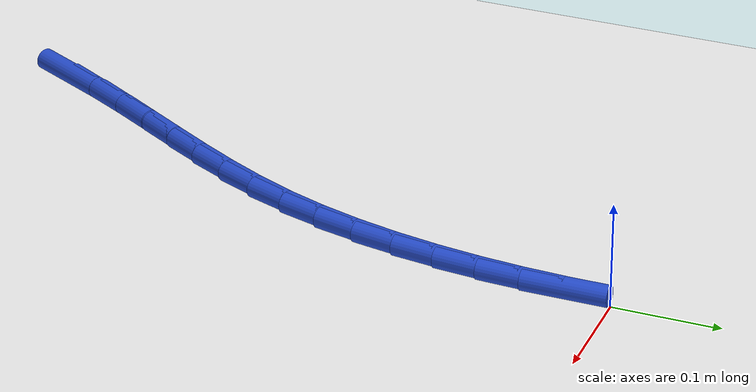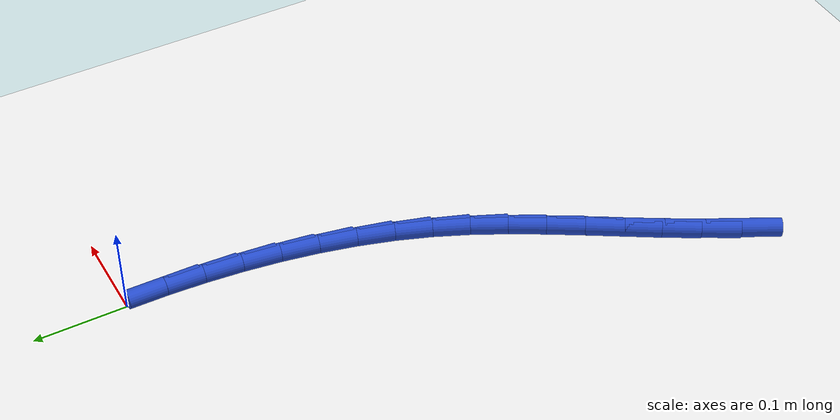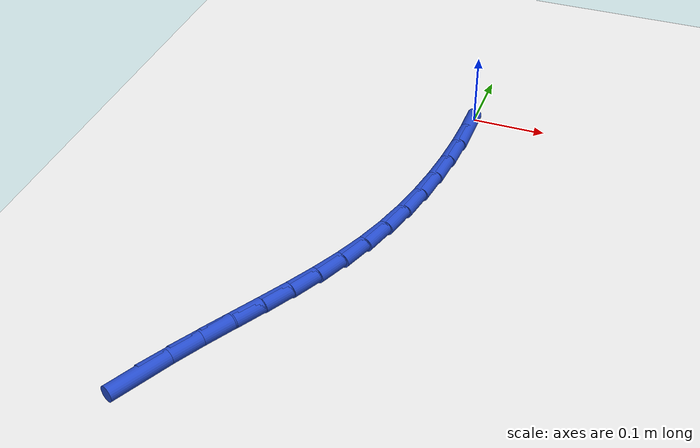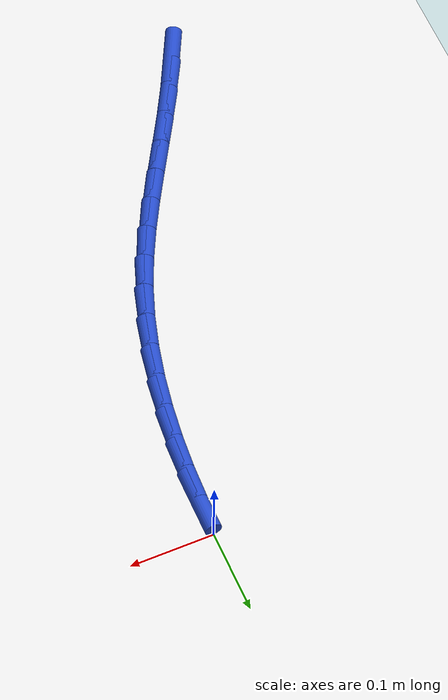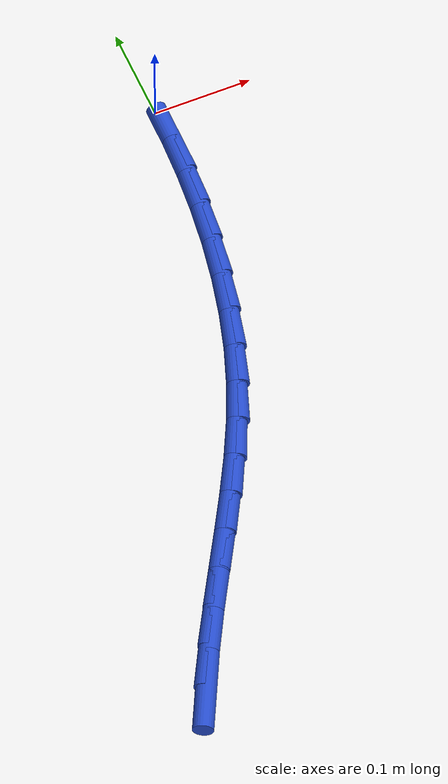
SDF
<sdf version="1.6">
 <world name="default">
  <model name="ground_plane">
   <static>1</static>
   <link name="link">
    <collision name="collision">
     <geometry><plane><normal>0 0 1</normal><size>100 100</size></plane></geometry>
     <surface><friction><ode><mu>100</mu><mu2>50</mu2></ode></friction></surface>
    </collision>
    <visual name="visual">
     <cast_shadows>0</cast_shadows>
     <geometry><plane><normal>0 0 1</normal><size>100 100</size></plane></geometry>
     <material>
      <script><uri>file://media/materials/scripts/gazebo.material</uri><name>Gazebo/WhiteGlow</name></script>
     </material>
    </visual>
   </link>
  </model>
  <model name="line">
   <link name="link_174">
    <pose>-0.2082560343043629 -0.6087645690070046 0.01 0 1.57 1.0992928069549874</pose>
    <collision name="collision">
     <geometry><cylinder><radius>0.01</radius><length>0.08</length></cylinder></geometry>
    </collision>
    <visual name="visual">
     <material>
      <script><name>Gazebo/Blue</name><uri>file://media/materials/scripts/gazebo.material</uri></script>
     </material>
     <geometry><cylinder><radius>0.01</radius><length>0.08</length></cylinder></geometry>
    </visual>
   </link>
   <link name="link_175">
    <pose>-0.18886468387337793 -0.5707317846184873 0.01 0 1.57 1.0630864698914708</pose>
    <collision name="collision">
     <geometry><cylinder><radius>0.01</radius><length>0.08</length></cylinder></geometry>
    </collision>
    <visual name="visual">
     <material>
      <script><name>Gazebo/Blue</name><uri>file://media/materials/scripts/gazebo.material</uri></script>
     </material>
     <geometry><cylinder><radius>0.01</radius><length>0.08</length></cylinder></geometry>
    </visual>
   </link>
   <link name="link_176">
    <pose>-0.1685208039159124 -0.534165476811088 0.01 0 1.57 1.0406086755819266</pose>
    <collision name="collision">
     <geometry><cylinder><radius>0.01</radius><length>0.08</length></cylinder></geometry>
    </collision>
    <visual name="visual">
     <material>
      <script><name>Gazebo/Blue</name><uri>file://media/materials/scripts/gazebo.material</uri></script>
     </material>
     <geometry><cylinder><radius>0.01</radius><length>0.08</length></cylinder></geometry>
    </visual>
   </link>
   <link name="link_177">
    <pose>-0.1477008216707731 -0.4986467471127859 0.01 0 1.57 1.0327906734724444</pose>
    <collision name="collision">
     <geometry><cylinder><radius>0.01</radius><length>0.08</length></cylinder></geometry>
    </collision>
    <visual name="visual">
     <material>
      <script><name>Gazebo/Blue</name><uri>file://media/materials/scripts/gazebo.material</uri></script>
     </material>
     <geometry><cylinder><radius>0.01</radius><length>0.08</length></cylinder></geometry>
    </visual>
   </link>
   <link name="link_178">
    <pose>-0.12688116437676697 -0.4637566970515596 0.01 0 1.57 1.0402996359947443</pose>
    <collision name="collision">
     <geometry><cylinder><radius>0.01</radius><length>0.08</length></cylinder></geometry>
    </collision>
    <visual name="visual">
     <material>
      <script><name>Gazebo/Blue</name><uri>file://media/materials/scripts/gazebo.material</uri></script>
     </material>
     <geometry><cylinder><radius>0.01</radius><length>0.08</length></cylinder></geometry>
    </visual>
   </link>
   <link name="link_179">
    <pose>-0.10653825927270123 -0.42907642815538904 0.01 0 1.57 1.063550360171159</pose>
    <collision name="collision">
     <geometry><cylinder><radius>0.01</radius><length>0.08</length></cylinder></geometry>
    </collision>
    <visual name="visual">
     <material>
      <script><name>Gazebo/Blue</name><uri>file://media/materials/scripts/gazebo.material</uri></script>
     </material>
     <geometry><cylinder><radius>0.01</radius><length>0.08</length></cylinder></geometry>
    </visual>
   </link>
   <link name="link_180">
    <pose>-0.08714853359738187 -0.39418704195225146 0.01 0 1.57 1.1026222429265633</pose>
    <collision name="collision">
     <geometry><cylinder><radius>0.01</radius><length>0.08</length></cylinder></geometry>
    </collision>
    <visual name="visual">
     <material>
      <script><name>Gazebo/Blue</name><uri>file://media/materials/scripts/gazebo.material</uri></script>
     </material>
     <geometry><cylinder><radius>0.01</radius><length>0.08</length></cylinder></geometry>
    </visual>
   </link>
   <link name="link_181">
    <pose>-0.06918841458961623 -0.35866963997012674 0.01 0 1.57 1.1570725437227998</pose>
    <collision name="collision">
     <geometry><cylinder><radius>0.01</radius><length>0.08</length></cylinder></geometry>
    </collision>
    <visual name="visual">
     <material>
      <script><name>Gazebo/Blue</name><uri>file://media/materials/scripts/gazebo.material</uri></script>
     </material>
     <geometry><cylinder><radius>0.01</radius><length>0.08</length></cylinder></geometry>
    </visual>
   </link>
   <link name="link_182">
    <pose>-0.053134296844806805 -0.32210536147234003 0.01 0 1.57 1.2218036627741744</pose>
    <collision name="collision">
     <geometry><cylinder><radius>0.01</radius><length>0.08</length></cylinder></geometry>
    </collision>
    <visual name="visual">
     <material>
      <script><name>Gazebo/Blue</name><uri>file://media/materials/scripts/gazebo.material</uri></script>
     </material>
     <geometry><cylinder><radius>0.01</radius><length>0.08</length></cylinder></geometry>
    </visual>
   </link>
   <link name="link_183">
    <pose>-0.03934507940020267 -0.2842111690429974 0.01 0 1.57 1.2834021900902066</pose>
    <collision name="collision">
     <geometry><cylinder><radius>0.01</radius><length>0.08</length></cylinder></geometry>
    </collision>
    <visual name="visual">
     <material>
      <script><name>Gazebo/Blue</name><uri>file://media/materials/scripts/gazebo.material</uri></script>
     </material>
     <geometry><cylinder><radius>0.01</radius><length>0.08</length></cylinder></geometry>
    </visual>
   </link>
   <link name="link_184">
    <pose>-0.027798060281626444 -0.24514515101938034 0.01 0 1.57 1.3398155350162362</pose>
    <collision name="collision">
     <geometry><cylinder><radius>0.01</radius><length>0.08</length></cylinder></geometry>
    </collision>
    <visual name="visual">
     <material>
      <script><name>Gazebo/Blue</name><uri>file://media/materials/scripts/gazebo.material</uri></script>
     </material>
     <geometry><cylinder><radius>0.01</radius><length>0.08</length></cylinder></geometry>
    </visual>
   </link>
   <link name="link_185">
    <pose>-0.018393201803064623 -0.20515479480509732 0.01 0 1.57 1.3916880108110055</pose>
    <collision name="collision">
     <geometry><cylinder><radius>0.01</radius><length>0.08</length></cylinder></geometry>
    </collision>
    <visual name="visual">
     <material>
      <script><name>Gazebo/Blue</name><uri>file://media/materials/scripts/gazebo.material</uri></script>
     </material>
     <geometry><cylinder><radius>0.01</radius><length>0.08</length></cylinder></geometry>
    </visual>
   </link>
   <link name="link_186">
    <pose>-0.011030466278503879 -0.16448758780375813 0.01 0 1.57 1.4396530531017195</pose>
    <collision name="collision">
     <geometry><cylinder><radius>0.01</radius><length>0.08</length></cylinder></geometry>
    </collision>
    <visual name="visual">
     <material>
      <script><name>Gazebo/Blue</name><uri>file://media/materials/scripts/gazebo.material</uri></script>
     </material>
     <geometry><cylinder><radius>0.01</radius><length>0.08</length></cylinder></geometry>
    </visual>
   </link>
   <link name="link_187">
    <pose>-0.00560981602193042 -0.1233910174189696 0.01 0 1.57 1.484318328112943</pose>
    <collision name="collision">
     <geometry><cylinder><radius>0.01</radius><length>0.08</length></cylinder></geometry>
    </collision>
    <visual name="visual">
     <material>
      <script><name>Gazebo/Blue</name><uri>file://media/materials/scripts/gazebo.material</uri></script>
     </material>
     <geometry><cylinder><radius>0.01</radius><length>0.08</length></cylinder></geometry>
    </visual>
   </link>
   <link name="link_188">
    <pose>-0.0020312133473309375 -0.08211257105434124 0.01 0 1.57 1.526262179721883</pose>
    <collision name="collision">
     <geometry><cylinder><radius>0.01</radius><length>0.08</length></cylinder></geometry>
    </collision>
    <visual name="visual">
     <material>
      <script><name>Gazebo/Blue</name><uri>file://media/materials/scripts/gazebo.material</uri></script>
     </material>
     <geometry><cylinder><radius>0.01</radius><length>0.08</length></cylinder></geometry>
    </visual>
   </link>
   <link name="link_189">
    <pose>-0.00019462056869195242 -0.0408997361134818 0.01 0 1.57 1.5660378828960826</pose>
    <collision name="collision">
     <geometry><cylinder><radius>0.01</radius><length>0.08</length></cylinder></geometry>
    </collision>
    <visual name="visual">
     <material>
      <script><name>Gazebo/Blue</name><uri>file://media/materials/scripts/gazebo.material</uri></script>
     </material>
     <geometry><cylinder><radius>0.01</radius><length>0.08</length></cylinder></geometry>
    </visual>
   </link>
  </model>
 </world>
</sdf>
